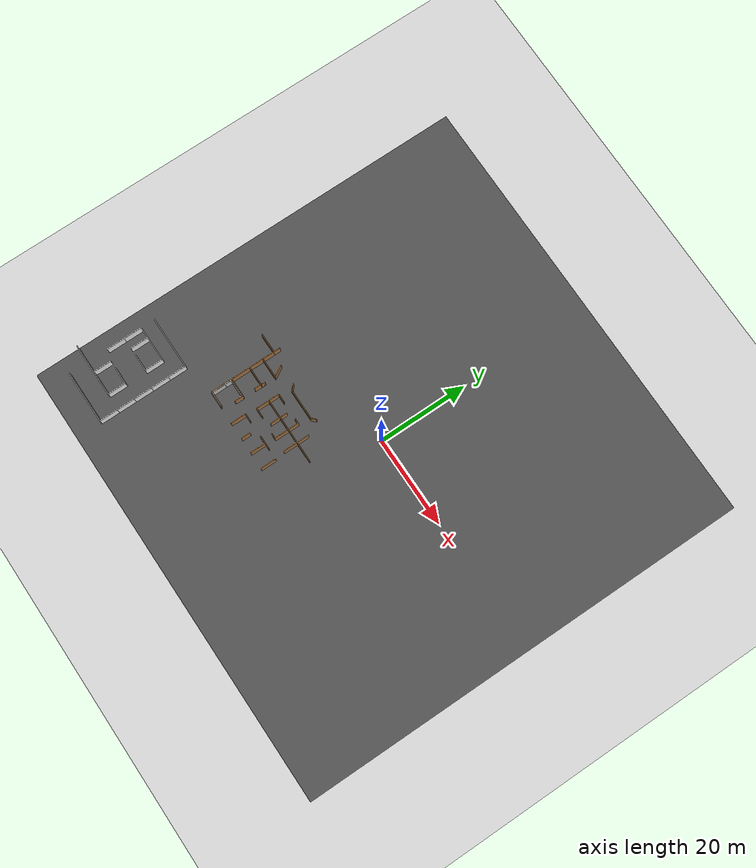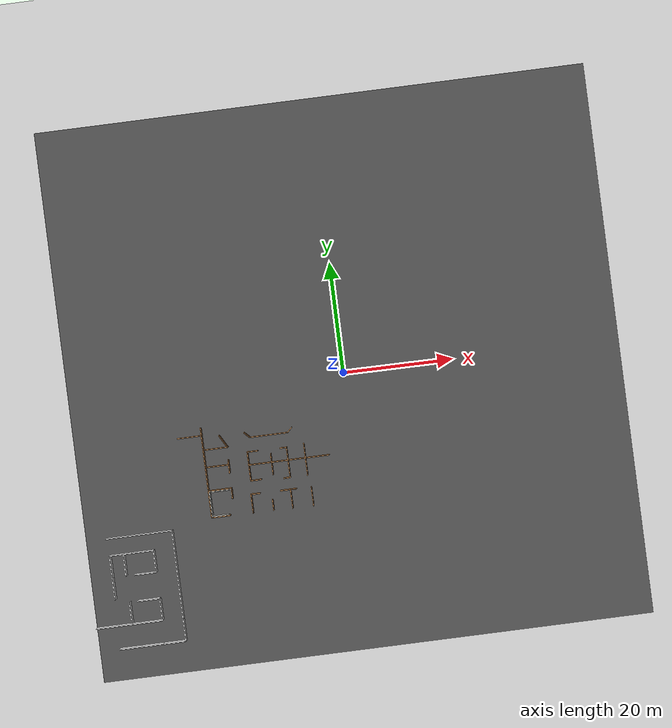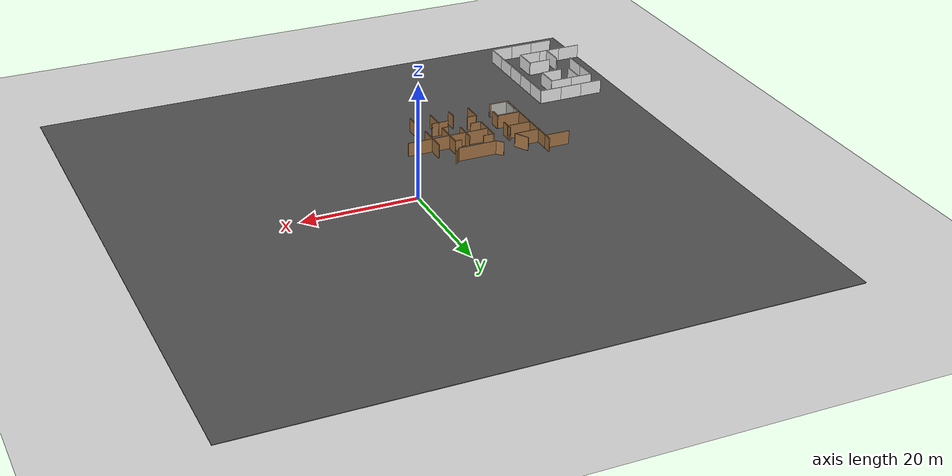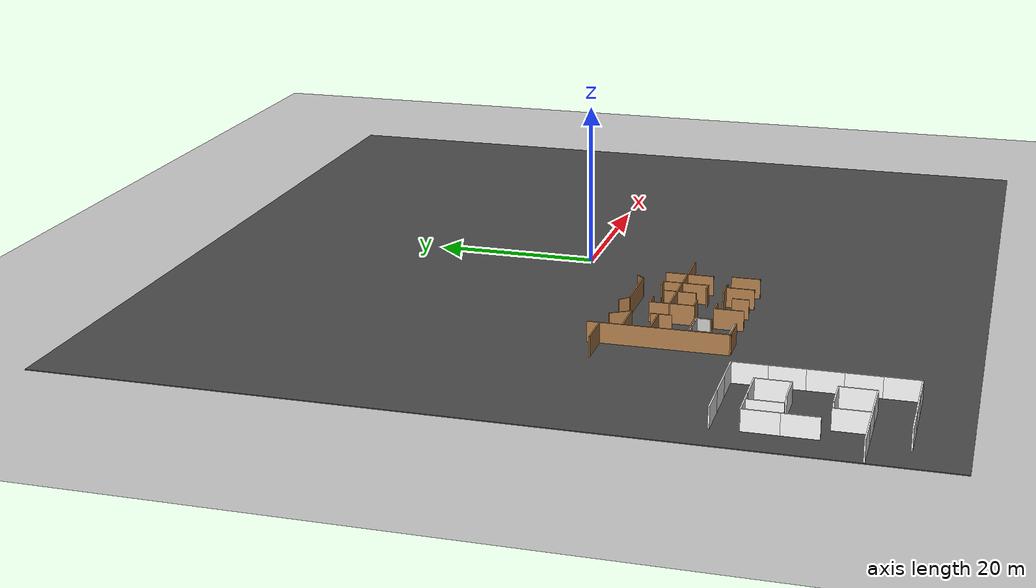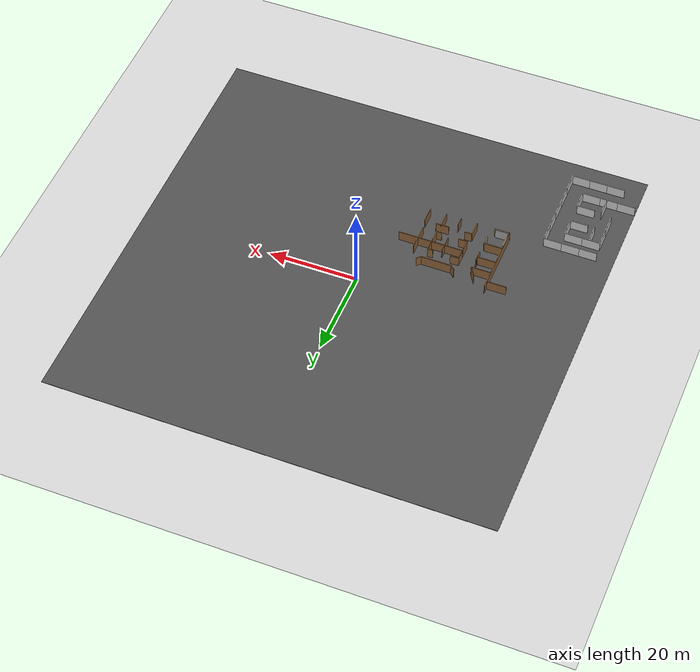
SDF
<sdf version="1.6">
 <world name="default">
  <model name="ground_plane">
   <static>1</static>
   <link name="link">
    <collision name="collision">
     <geometry><plane><normal>0 0 1</normal><size>100 100</size></plane></geometry>
     <surface><friction><ode><mu>100</mu><mu2>50</mu2></ode></friction></surface>
    </collision>
    <visual name="visual">
     <cast_shadows>0</cast_shadows>
     <geometry><plane><normal>0 0 1</normal><size>100 100</size></plane></geometry>
     <material>
      <script><uri>file://media/materials/scripts/gazebo.material</uri><name>Gazebo/Grey</name></script>
     </material>
    </visual>
   </link>
  </model>
  <model name="asphalt_plane">
   <static>1</static>
   <link name="link">
    <collision name="collision"><geometry><box><size>100 100 0.1</size></box></geometry></collision>
    <visual name="visual">
     <cast_shadows>0</cast_shadows>
     <geometry><box><size>100 100 0.1</size></box></geometry>
     <material>
      <script>
       <uri>model://asphalt_plane/materials/scripts</uri>
       <uri>model://asphalt_plane/materials/textures</uri>
       <name>vrc/asphalt</name>
      </script>
     </material>
    </visual>
   </link>
  </model>
  <model name="Hard_wall_wall_3">
   <pose>-26.6192 -21.1644 0 0 -0 0</pose>
   <link name="Wall_0">
    <collision name="Wall_0_Collision">
     <geometry><box><size>3 0.15 2.5</size></box></geometry>
     <pose>0 0 1.25 0 -0 0</pose>
    </collision>
    <visual name="Wall_0_Visual">
     <pose>0 0 1.25 0 -0 0</pose>
     <geometry><box><size>3 0.15 2.5</size></box></geometry>
     <material>
      <script><uri>file://media/materials/scripts/gazebo.material</uri><name>Gazebo/CeilingTiled</name></script>
      <ambient>1 1 1 1</ambient>
     </material>
     <meta><layer>0</layer></meta>
    </visual>
    <pose>0 0 0 0 -0 1.5708</pose>
   </link>
   <static>1</static>
  </model>
  <model name="Hard_wall_wall_4">
   <pose>-26.6244 -19.6415 0 0 -0 0</pose>
   <link name="Wall_0">
    <collision name="Wall_0_Collision">
     <geometry><box><size>3 0.15 2.5</size></box></geometry>
     <pose>0 0 1.25 0 -0 0</pose>
    </collision>
    <visual name="Wall_0_Visual">
     <pose>0 0 1.25 0 -0 0</pose>
     <geometry><box><size>3 0.15 2.5</size></box></geometry>
     <material>
      <script><uri>file://media/materials/scripts/gazebo.material</uri><name>Gazebo/CeilingTiled</name></script>
      <ambient>1 1 1 1</ambient>
     </material>
     <meta><layer>0</layer></meta>
    </visual>
    <pose>0 0 0 0 -0 1.5708</pose>
   </link>
   <static>1</static>
  </model>
  <model name="Hard_wall_wall_6_clone">
   <pose>-25.1114 -22.6438 0 0 -0 1.57079</pose>
   <link name="Wall_0">
    <collision name="Wall_0_Collision">
     <geometry><box><size>3 0.15 2.5</size></box></geometry>
     <pose>0 0 1.25 0 -0 0</pose>
    </collision>
    <visual name="Wall_0_Visual">
     <pose>0 0 1.25 0 -0 0</pose>
     <geometry><box><size>3 0.15 2.5</size></box></geometry>
     <material>
      <script><uri>file://media/materials/scripts/gazebo.material</uri><name>Gazebo/CeilingTiled</name></script>
      <ambient>1 1 1 1</ambient>
     </material>
     <meta><layer>0</layer></meta>
    </visual>
    <pose>0 0 0 0 -0 1.5708</pose>
   </link>
   <static>1</static>
  </model>
  <model name="Hard_wall_wall_6_clone_0">
   <pose>-25.1351 -18.2014 0 0 -0 1.57079</pose>
   <link name="Wall_0">
    <collision name="Wall_0_Collision">
     <geometry><box><size>3 0.15 2.5</size></box></geometry>
     <pose>0 0 1.25 0 -0 0</pose>
    </collision>
    <visual name="Wall_0_Visual">
     <pose>0 0 1.25 0 -0 0</pose>
     <geometry><box><size>3 0.15 2.5</size></box></geometry>
     <material>
      <script><uri>file://media/materials/scripts/gazebo.material</uri><name>Gazebo/CeilingTiled</name></script>
      <ambient>1 1 1 1</ambient>
     </material>
     <meta><layer>0</layer></meta>
    </visual>
    <pose>0 0 0 0 -0 1.5708</pose>
   </link>
   <static>1</static>
  </model>
  <model name="Medium_wall_wall_clone_7">
   <pose>-44.2 -24.2 0 0 -0 0</pose>
   <link name="Wall_0">
    <collision name="Wall_0_Collision">
     <geometry><box><size>4 0.15 2.5</size></box></geometry>
     <pose>0 0 1.25 0 -0 0</pose>
    </collision>
    <visual name="Wall_0_Visual">
     <pose>0 0 1.25 0 -0 0</pose>
     <geometry><box><size>4 0.15 2.5</size></box></geometry>
     <material>
      <script><uri>file://media/materials/scripts/gazebo.material</uri><name>Gazebo/Medium_walls</name></script>
      <ambient>1 1 1 1</ambient>
     </material>
     <meta><layer>0</layer></meta>
    </visual>
   </link>
   <static>1</static>
  </model>
  <model name="Medium_wall_wall_clone_8">
   <pose>-40.2 -24.2 0 0 -0 0</pose>
   <link name="Wall_0">
    <collision name="Wall_0_Collision">
     <geometry><box><size>4 0.15 2.5</size></box></geometry>
     <pose>0 0 1.25 0 -0 0</pose>
    </collision>
    <visual name="Wall_0_Visual">
     <pose>0 0 1.25 0 -0 0</pose>
     <geometry><box><size>4 0.15 2.5</size></box></geometry>
     <material>
      <script><uri>file://media/materials/scripts/gazebo.material</uri><name>Gazebo/Medium_walls</name></script>
      <ambient>1 1 1 1</ambient>
     </material>
     <meta><layer>0</layer></meta>
    </visual>
   </link>
   <static>1</static>
  </model>
  <model name="Medium_wall_wall_clone_9">
   <pose>-36.2 -24.2 0 0 -0 0</pose>
   <link name="Wall_0">
    <collision name="Wall_0_Collision">
     <geometry><box><size>4 0.15 2.5</size></box></geometry>
     <pose>0 0 1.25 0 -0 0</pose>
    </collision>
    <visual name="Wall_0_Visual">
     <pose>0 0 1.25 0 -0 0</pose>
     <geometry><box><size>4 0.15 2.5</size></box></geometry>
     <material>
      <script><uri>file://media/materials/scripts/gazebo.material</uri><name>Gazebo/Medium_walls</name></script>
      <ambient>1 1 1 1</ambient>
     </material>
     <meta><layer>0</layer></meta>
    </visual>
   </link>
   <static>1</static>
  </model>
  <model name="Medium_wall_wall_clone_10">
   <pose>-43.9084 -27.3 0 0 -0 0</pose>
   <link name="Wall_0">
    <collision name="Wall_0_Collision">
     <geometry><box><size>4 0.15 2.5</size></box></geometry>
     <pose>0 0 1.25 0 -0 0</pose>
    </collision>
    <visual name="Wall_0_Visual">
     <pose>0 0 1.25 0 -0 0</pose>
     <geometry><box><size>4 0.15 2.5</size></box></geometry>
     <material>
      <script><uri>file://media/materials/scripts/gazebo.material</uri><name>Gazebo/Medium_walls</name></script>
      <ambient>1 1 1 1</ambient>
     </material>
     <meta><layer>0</layer></meta>
    </visual>
   </link>
   <static>1</static>
  </model>
  <model name="Medium_wall_wall_clone_11">
   <pose>-39.9084 -27.3 0 0 -0 0</pose>
   <link name="Wall_0">
    <collision name="Wall_0_Collision">
     <geometry><box><size>4 0.15 2.5</size></box></geometry>
     <pose>0 0 1.25 0 -0 0</pose>
    </collision>
    <visual name="Wall_0_Visual">
     <pose>0 0 1.25 0 -0 0</pose>
     <geometry><box><size>4 0.15 2.5</size></box></geometry>
     <material>
      <script><uri>file://media/materials/scripts/gazebo.material</uri><name>Gazebo/Medium_walls</name></script>
      <ambient>1 1 1 1</ambient>
     </material>
     <meta><layer>0</layer></meta>
    </visual>
   </link>
   <static>1</static>
  </model>
  <model name="Medium_wall_wall_clone_12">
   <pose>-36.2 -44.2 0 0 -0 0</pose>
   <link name="Wall_0">
    <collision name="Wall_0_Collision">
     <geometry><box><size>4 0.15 2.5</size></box></geometry>
     <pose>0 0 1.25 0 -0 0</pose>
    </collision>
    <visual name="Wall_0_Visual">
     <pose>0 0 1.25 0 -0 0</pose>
     <geometry><box><size>4 0.15 2.5</size></box></geometry>
     <material>
      <script><uri>file://media/materials/scripts/gazebo.material</uri><name>Gazebo/Medium_walls</name></script>
      <ambient>1 1 1 1</ambient>
     </material>
     <meta><layer>0</layer></meta>
    </visual>
   </link>
   <static>1</static>
  </model>
  <model name="Medium_wall_wall_clone_13">
   <pose>-40.2 -44.2 0 0 -0 0</pose>
   <link name="Wall_0">
    <collision name="Wall_0_Collision">
     <geometry><box><size>4 0.15 2.5</size></box></geometry>
     <pose>0 0 1.25 0 -0 0</pose>
    </collision>
    <visual name="Wall_0_Visual">
     <pose>0 0 1.25 0 -0 0</pose>
     <geometry><box><size>4 0.15 2.5</size></box></geometry>
     <material>
      <script><uri>file://media/materials/scripts/gazebo.material</uri><name>Gazebo/Medium_walls</name></script>
      <ambient>1 1 1 1</ambient>
     </material>
     <meta><layer>0</layer></meta>
    </visual>
   </link>
   <static>1</static>
  </model>
  <model name="Medium_wall_wall_clone_14">
   <pose>-44.2 -44.2 0 0 -0 0</pose>
   <link name="Wall_0">
    <collision name="Wall_0_Collision">
     <geometry><box><size>4 0.15 2.5</size></box></geometry>
     <pose>0 0 1.25 0 -0 0</pose>
    </collision>
    <visual name="Wall_0_Visual">
     <pose>0 0 1.25 0 -0 0</pose>
     <geometry><box><size>4 0.15 2.5</size></box></geometry>
     <material>
      <script><uri>file://media/materials/scripts/gazebo.material</uri><name>Gazebo/Medium_walls</name></script>
      <ambient>1 1 1 1</ambient>
     </material>
     <meta><layer>0</layer></meta>
    </visual>
   </link>
   <static>1</static>
  </model>
  <model name="Medium_wall_wall_clone_15">
   <pose>-47.9084 -40 0 0 -0 0</pose>
   <link name="Wall_0">
    <collision name="Wall_0_Collision">
     <geometry><box><size>4 0.15 2.5</size></box></geometry>
     <pose>0 0 1.25 0 -0 0</pose>
    </collision>
    <visual name="Wall_0_Visual">
     <pose>0 0 1.25 0 -0 0</pose>
     <geometry><box><size>4 0.15 2.5</size></box></geometry>
     <material>
      <script><uri>file://media/materials/scripts/gazebo.material</uri><name>Gazebo/Medium_walls</name></script>
      <ambient>1 1 1 1</ambient>
     </material>
     <meta><layer>0</layer></meta>
    </visual>
   </link>
   <static>1</static>
  </model>
  <model name="Medium_wall_wall_clone_16">
   <pose>-43.9084 -40 0 0 -0 0</pose>
   <link name="Wall_0">
    <collision name="Wall_0_Collision">
     <geometry><box><size>4 0.15 2.5</size></box></geometry>
     <pose>0 0 1.25 0 -0 0</pose>
    </collision>
    <visual name="Wall_0_Visual">
     <pose>0 0 1.25 0 -0 0</pose>
     <geometry><box><size>4 0.15 2.5</size></box></geometry>
     <material>
      <script><uri>file://media/materials/scripts/gazebo.material</uri><name>Gazebo/Medium_walls</name></script>
      <ambient>1 1 1 1</ambient>
     </material>
     <meta><layer>0</layer></meta>
    </visual>
   </link>
   <static>1</static>
  </model>
  <model name="Medium_wall_wall_clone_17">
   <pose>-39.9084 -40 0 0 -0 0</pose>
   <link name="Wall_0">
    <collision name="Wall_0_Collision">
     <geometry><box><size>4 0.15 2.5</size></box></geometry>
     <pose>0 0 1.25 0 -0 0</pose>
    </collision>
    <visual name="Wall_0_Visual">
     <pose>0 0 1.25 0 -0 0</pose>
     <geometry><box><size>4 0.15 2.5</size></box></geometry>
     <material>
      <script><uri>file://media/materials/scripts/gazebo.material</uri><name>Gazebo/Medium_walls</name></script>
      <ambient>1 1 1 1</ambient>
     </material>
     <meta><layer>0</layer></meta>
    </visual>
   </link>
   <static>1</static>
  </model>
  <model name="Medium_wall_wall_clone_18">
   <pose>-39.9084 -36 0 0 -0 0</pose>
   <link name="Wall_0">
    <collision name="Wall_0_Collision">
     <geometry><box><size>4 0.15 2.5</size></box></geometry>
     <pose>0 0 1.25 0 -0 0</pose>
    </collision>
    <visual name="Wall_0_Visual">
     <pose>0 0 1.25 0 -0 0</pose>
     <geometry><box><size>4 0.15 2.5</size></box></geometry>
     <material>
      <script><uri>file://media/materials/scripts/gazebo.material</uri><name>Gazebo/Medium_walls</name></script>
      <ambient>1 1 1 1</ambient>
     </material>
     <meta><layer>0</layer></meta>
    </visual>
   </link>
   <static>1</static>
  </model>
  <model name="Medium_wall_wall_clone_19">
   <pose>-39.9084 -31.2445 0 0 -0 0</pose>
   <link name="Wall_0">
    <collision name="Wall_0_Collision">
     <geometry><box><size>4 0.15 2.5</size></box></geometry>
     <pose>0 0 1.25 0 -0 0</pose>
    </collision>
    <visual name="Wall_0_Visual">
     <pose>0 0 1.25 0 -0 0</pose>
     <geometry><box><size>4 0.15 2.5</size></box></geometry>
     <material>
      <script><uri>file://media/materials/scripts/gazebo.material</uri><name>Gazebo/Medium_walls</name></script>
      <ambient>1 1 1 1</ambient>
     </material>
     <meta><layer>0</layer></meta>
    </visual>
   </link>
   <static>1</static>
  </model>
  <model name="Medium_wall_wall_1_clone_4">
   <pose>-34.2 -42.2 0 0 -0 1.57079</pose>
   <link name="Wall_0">
    <collision name="Wall_0_Collision">
     <geometry><box><size>4 0.15 2.5</size></box></geometry>
     <pose>0 0 1.25 0 -0 0</pose>
    </collision>
    <visual name="Wall_0_Visual">
     <pose>0 0 1.25 0 -0 0</pose>
     <geometry><box><size>4 0.15 2.5</size></box></geometry>
     <material>
      <script><uri>file://media/materials/scripts/gazebo.material</uri><name>Gazebo/Medium_walls</name></script>
      <ambient>1 1 1 1</ambient>
     </material>
     <meta><layer>0</layer></meta>
    </visual>
   </link>
   <static>1</static>
  </model>
  <model name="Medium_wall_wall_1_clone_5">
   <pose>-34.2 -38.2 0 0 -0 1.57079</pose>
   <link name="Wall_0">
    <collision name="Wall_0_Collision">
     <geometry><box><size>4 0.15 2.5</size></box></geometry>
     <pose>0 0 1.25 0 -0 0</pose>
    </collision>
    <visual name="Wall_0_Visual">
     <pose>0 0 1.25 0 -0 0</pose>
     <geometry><box><size>4 0.15 2.5</size></box></geometry>
     <material>
      <script><uri>file://media/materials/scripts/gazebo.material</uri><name>Gazebo/Medium_walls</name></script>
      <ambient>1 1 1 1</ambient>
     </material>
     <meta><layer>0</layer></meta>
    </visual>
   </link>
   <static>1</static>
  </model>
  <model name="Medium_wall_wall_1_clone_6">
   <pose>-34.2 -34.2 0 0 -0 1.57079</pose>
   <link name="Wall_0">
    <collision name="Wall_0_Collision">
     <geometry><box><size>4 0.15 2.5</size></box></geometry>
     <pose>0 0 1.25 0 -0 0</pose>
    </collision>
    <visual name="Wall_0_Visual">
     <pose>0 0 1.25 0 -0 0</pose>
     <geometry><box><size>4 0.15 2.5</size></box></geometry>
     <material>
      <script><uri>file://media/materials/scripts/gazebo.material</uri><name>Gazebo/Medium_walls</name></script>
      <ambient>1 1 1 1</ambient>
     </material>
     <meta><layer>0</layer></meta>
    </visual>
   </link>
   <static>1</static>
  </model>
  <model name="Medium_wall_wall_1_clone_7">
   <pose>-34.2 -30.2 0 0 -0 1.57079</pose>
   <link name="Wall_0">
    <collision name="Wall_0_Collision">
     <geometry><box><size>4 0.15 2.5</size></box></geometry>
     <pose>0 0 1.25 0 -0 0</pose>
    </collision>
    <visual name="Wall_0_Visual">
     <pose>0 0 1.25 0 -0 0</pose>
     <geometry><box><size>4 0.15 2.5</size></box></geometry>
     <material>
      <script><uri>file://media/materials/scripts/gazebo.material</uri><name>Gazebo/Medium_walls</name></script>
      <ambient>1 1 1 1</ambient>
     </material>
     <meta><layer>0</layer></meta>
    </visual>
   </link>
   <static>1</static>
  </model>
  <model name="Medium_wall_wall_1_clone_8">
   <pose>-34.2 -26.2 0 0 -0 1.57079</pose>
   <link name="Wall_0">
    <collision name="Wall_0_Collision">
     <geometry><box><size>4 0.15 2.5</size></box></geometry>
     <pose>0 0 1.25 0 -0 0</pose>
    </collision>
    <visual name="Wall_0_Visual">
     <pose>0 0 1.25 0 -0 0</pose>
     <geometry><box><size>4 0.15 2.5</size></box></geometry>
     <material>
      <script><uri>file://media/materials/scripts/gazebo.material</uri><name>Gazebo/Medium_walls</name></script>
      <ambient>1 1 1 1</ambient>
     </material>
     <meta><layer>0</layer></meta>
    </visual>
   </link>
   <static>1</static>
  </model>
  <model name="Medium_wall_wall_1_clone_9">
   <pose>-37.9084 -38 0 0 -0 1.57079</pose>
   <link name="Wall_0">
    <collision name="Wall_0_Collision">
     <geometry><box><size>4 0.15 2.5</size></box></geometry>
     <pose>0 0 1.25 0 -0 0</pose>
    </collision>
    <visual name="Wall_0_Visual">
     <pose>0 0 1.25 0 -0 0</pose>
     <geometry><box><size>4 0.15 2.5</size></box></geometry>
     <material>
      <script><uri>file://media/materials/scripts/gazebo.material</uri><name>Gazebo/Medium_walls</name></script>
      <ambient>1 1 1 1</ambient>
     </material>
     <meta><layer>0</layer></meta>
    </visual>
   </link>
   <static>1</static>
  </model>
  <model name="Medium_wall_wall_1_clone_10">
   <pose>-37.9551 -29.3 0 0 -0 1.57079</pose>
   <link name="Wall_0">
    <collision name="Wall_0_Collision">
     <geometry><box><size>4 0.15 2.5</size></box></geometry>
     <pose>0 0 1.25 0 -0 0</pose>
    </collision>
    <visual name="Wall_0_Visual">
     <pose>0 0 1.25 0 -0 0</pose>
     <geometry><box><size>4 0.15 2.5</size></box></geometry>
     <material>
      <script><uri>file://media/materials/scripts/gazebo.material</uri><name>Gazebo/Medium_walls</name></script>
      <ambient>1 1 1 1</ambient>
     </material>
     <meta><layer>0</layer></meta>
    </visual>
   </link>
   <static>1</static>
  </model>
  <model name="Medium_wall_wall_1_clone_11">
   <pose>-45.8877 -29.3 0 0 -0 1.57079</pose>
   <link name="Wall_0">
    <collision name="Wall_0_Collision">
     <geometry><box><size>4 0.15 2.5</size></box></geometry>
     <pose>0 0 1.25 0 -0 0</pose>
    </collision>
    <visual name="Wall_0_Visual">
     <pose>0 0 1.25 0 -0 0</pose>
     <geometry><box><size>4 0.15 2.5</size></box></geometry>
     <material>
      <script><uri>file://media/materials/scripts/gazebo.material</uri><name>Gazebo/Medium_walls</name></script>
      <ambient>1 1 1 1</ambient>
     </material>
     <meta><layer>0</layer></meta>
    </visual>
   </link>
   <static>1</static>
  </model>
  <model name="Medium_wall_wall_1_clone_12">
   <pose>-43.4 -29.3 0 0 -0 1.57079</pose>
   <link name="Wall_0">
    <collision name="Wall_0_Collision">
     <geometry><box><size>4 0.15 2.5</size></box></geometry>
     <pose>0 0 1.25 0 -0 0</pose>
    </collision>
    <visual name="Wall_0_Visual">
     <pose>0 0 1.25 0 -0 0</pose>
     <geometry><box><size>4 0.15 2.5</size></box></geometry>
     <material>
      <script><uri>file://media/materials/scripts/gazebo.material</uri><name>Gazebo/Medium_walls</name></script>
      <ambient>1 1 1 1</ambient>
     </material>
     <meta><layer>0</layer></meta>
    </visual>
   </link>
   <static>1</static>
  </model>
  <model name="Medium_wall_wall_1_clone_13">
   <pose>-43.4 -38 0 0 -0 1.57079</pose>
   <link name="Wall_0">
    <collision name="Wall_0_Collision">
     <geometry><box><size>4 0.15 2.5</size></box></geometry>
     <pose>0 0 1.25 0 -0 0</pose>
    </collision>
    <visual name="Wall_0_Visual">
     <pose>0 0 1.25 0 -0 0</pose>
     <geometry><box><size>4 0.15 2.5</size></box></geometry>
     <material>
      <script><uri>file://media/materials/scripts/gazebo.material</uri><name>Gazebo/Medium_walls</name></script>
      <ambient>1 1 1 1</ambient>
     </material>
     <meta><layer>0</layer></meta>
    </visual>
   </link>
   <static>1</static>
  </model>
  <model name="Medium_wall_wall_1_clone_14">
   <pose>-45.8877 -33.3 0 0 -0 1.57079</pose>
   <link name="Wall_0">
    <collision name="Wall_0_Collision">
     <geometry><box><size>4 0.15 2.5</size></box></geometry>
     <pose>0 0 1.25 0 -0 0</pose>
    </collision>
    <visual name="Wall_0_Visual">
     <pose>0 0 1.25 0 -0 0</pose>
     <geometry><box><size>4 0.15 2.5</size></box></geometry>
     <material>
      <script><uri>file://media/materials/scripts/gazebo.material</uri><name>Gazebo/Medium_walls</name></script>
      <ambient>1 1 1 1</ambient>
     </material>
     <meta><layer>0</layer></meta>
    </visual>
   </link>
   <static>1</static>
  </model>
  <model name="Soft_wall_v1_1">
   <pose>-14.3408 -3.86286 0 0 -0 0</pose>
   <link name="Wall_159">
    <collision name="Wall_159_Collision">
     <geometry><box><size>1.5 0.15 2.5</size></box></geometry>
     <pose>0 0 1.25 0 -0 0</pose>
    </collision>
    <visual name="Wall_159_Visual">
     <pose>0 0 1.25 0 -0 0</pose>
     <geometry><box><size>1.5 0.15 2.5</size></box></geometry>
     <material>
      <script><uri>file://media/materials/scripts/gazebo.material</uri><name>Gazebo/Wood</name></script>
      <ambient>1 1 1 1</ambient>
     </material>
     <meta><layer>0</layer></meta>
    </visual>
    <pose>-12.4568 -3.428 0 0 -0 1.5708</pose>
   </link>
   <link name="Wall_164">
    <collision name="Wall_164_Collision">
     <geometry><box><size>4.5 0.15 2.5</size></box></geometry>
     <pose>0 0 1.25 0 -0 0</pose>
    </collision>
    <visual name="Wall_164_Visual">
     <pose>0 0 1.25 0 -0 0</pose>
     <geometry><box><size>4.5 0.15 2.5</size></box></geometry>
     <material>
      <script><uri>file://media/materials/scripts/gazebo.material</uri><name>Gazebo/Wood</name></script>
      <ambient>1 1 1 1</ambient>
     </material>
     <meta><layer>0</layer></meta>
    </visual>
    <pose>-10.2229 -6.73409 0 0 -0 0</pose>
   </link>
   <link name="Wall_165">
    <collision name="Wall_165_Collision">
     <geometry><box><size>2.75 0.15 2.5</size></box></geometry>
     <pose>0 0 1.25 0 -0 0</pose>
    </collision>
    <visual name="Wall_165_Visual">
     <pose>0 0 1.25 0 -0 0</pose>
     <geometry><box><size>2.75 0.15 2.5</size></box></geometry>
     <material>
      <script><uri>file://media/materials/scripts/gazebo.material</uri><name>Gazebo/Wood</name></script>
      <ambient>1 1 1 1</ambient>
     </material>
     <meta><layer>0</layer></meta>
    </visual>
    <pose>-8.69791 -5.60825 0 0 -0 2.0944</pose>
   </link>
   <link name="Wall_167">
    <collision name="Wall_167_Collision">
     <geometry><box><size>4.25 0.15 2.5</size></box></geometry>
     <pose>0 0 1.25 0 -0 0</pose>
    </collision>
    <visual name="Wall_167_Visual">
     <pose>0 0 1.25 0 -0 0</pose>
     <geometry><box><size>4.25 0.15 2.5</size></box></geometry>
     <material>
      <script><uri>file://media/materials/scripts/gazebo.material</uri><name>Gazebo/Wood</name></script>
      <ambient>1 1 1 1</ambient>
     </material>
     <meta><layer>0</layer></meta>
    </visual>
    <pose>-10.2944 -9.89074 0 0 -0 0</pose>
   </link>
   <link name="Wall_168">
    <collision name="Wall_168_Collision">
     <geometry><box><size>1 0.15 2.5</size></box></geometry>
     <pose>0 0 1.25 0 -0 0</pose>
    </collision>
    <visual name="Wall_168_Visual">
     <pose>0 0 1.25 0 -0 0</pose>
     <geometry><box><size>1 0.15 2.5</size></box></geometry>
     <material>
      <script><uri>file://media/materials/scripts/gazebo.material</uri><name>Gazebo/Wood</name></script>
      <ambient>1 1 1 1</ambient>
     </material>
     <meta><layer>0</layer></meta>
    </visual>
    <pose>-8.24441 -9.46574 0 0 -0 1.5708</pose>
   </link>
   <link name="Wall_169">
    <collision name="Wall_169_Collision">
     <geometry><box><size>2.5 0.15 2.5</size></box></geometry>
     <pose>0 0 1.25 0 -0 0</pose>
    </collision>
    <visual name="Wall_169_Visual">
     <pose>0 0 1.25 0 -0 0</pose>
     <geometry><box><size>2.5 0.15 2.5</size></box></geometry>
     <material>
      <script><uri>file://media/materials/scripts/gazebo.material</uri><name>Gazebo/Wood</name></script>
      <ambient>1 1 1 1</ambient>
     </material>
     <meta><layer>0</layer></meta>
    </visual>
    <pose>-8.24441 -10.2157 0 0 0 -1.5708</pose>
   </link>
   <link name="Wall_171">
    <collision name="Wall_171_Collision">
     <geometry><box><size>4.25 0.15 2.5</size></box></geometry>
     <pose>0 0 1.25 0 -0 0</pose>
    </collision>
    <visual name="Wall_171_Visual">
     <pose>0 0 1.25 0 -0 0</pose>
     <geometry><box><size>4.25 0.15 2.5</size></box></geometry>
     <material>
      <script><uri>file://media/materials/scripts/gazebo.material</uri><name>Gazebo/Wood</name></script>
      <ambient>1 1 1 1</ambient>
     </material>
     <meta><layer>0</layer></meta>
    </visual>
    <pose>-10.3547 -14.1456 0 0 -0 0</pose>
   </link>
   <link name="Wall_172">
    <collision name="Wall_172_Collision">
     <geometry><box><size>2 0.15 2.5</size></box></geometry>
     <pose>0 0 1.25 0 -0 0</pose>
    </collision>
    <visual name="Wall_172_Visual">
     <pose>0 0 1.25 0 -0 0</pose>
     <geometry><box><size>2 0.15 2.5</size></box></geometry>
     <material>
      <script><uri>file://media/materials/scripts/gazebo.material</uri><name>Gazebo/Wood</name></script>
      <ambient>1 1 1 1</ambient>
     </material>
     <meta><layer>0</layer></meta>
    </visual>
    <pose>-8.3047 -15.0706 0 0 0 -1.5708</pose>
   </link>
   <link name="Wall_240">
    <collision name="Wall_240_Collision">
     <geometry><box><size>14.75 0.15 2.5</size></box></geometry>
     <pose>0 0 1.25 0 -0 0</pose>
    </collision>
    <visual name="Wall_240_Visual">
     <pose>0 0 1.25 0 -0 0</pose>
     <geometry><box><size>14.75 0.15 2.5</size></box></geometry>
     <material>
      <script><uri>file://media/materials/scripts/gazebo.material</uri><name>Gazebo/Wood</name></script>
      <ambient>1 1 1 1</ambient>
     </material>
     <meta><layer>0</layer></meta>
    </visual>
    <pose>2.64575 -10.4128 0 0 -0 3.14159</pose>
   </link>
   <link name="Wall_241">
    <collision name="Wall_241_Collision">
     <geometry><box><size>3 0.15 2.5</size></box></geometry>
     <pose>0 0 1.25 0 -0 0</pose>
    </collision>
    <visual name="Wall_241_Visual">
     <pose>0 0 1.25 0 -0 0</pose>
     <geometry><box><size>3 0.15 2.5</size></box></geometry>
     <material>
      <script><uri>file://media/materials/scripts/gazebo.material</uri><name>Gazebo/Wood</name></script>
      <ambient>1 1 1 1</ambient>
     </material>
     <meta><layer>0</layer></meta>
    </visual>
    <pose>-4.65424 -11.8378 0 0 0 -1.5708</pose>
   </link>
   <link name="Wall_242">
    <collision name="Wall_242_Collision">
     <geometry><box><size>2 0.15 2.5</size></box></geometry>
     <pose>0 0 1.25 0 -0 0</pose>
    </collision>
    <visual name="Wall_242_Visual">
     <pose>0 0 1.25 0 -0 0</pose>
     <geometry><box><size>2 0.15 2.5</size></box></geometry>
     <material>
      <script><uri>file://media/materials/scripts/gazebo.material</uri><name>Gazebo/Wood</name></script>
      <ambient>1 1 1 1</ambient>
     </material>
     <meta><layer>0</layer></meta>
    </visual>
    <pose>-3.72924 -13.2628 0 0 -0 0</pose>
   </link>
   <link name="Wall_244">
    <collision name="Wall_244_Collision">
     <geometry><box><size>2.25 0.15 2.5</size></box></geometry>
     <pose>0 0 1.25 0 -0 0</pose>
    </collision>
    <visual name="Wall_244_Visual">
     <pose>0 0 1.25 0 -0 0</pose>
     <geometry><box><size>2.25 0.15 2.5</size></box></geometry>
     <material>
      <script><uri>file://media/materials/scripts/gazebo.material</uri><name>Gazebo/Wood</name></script>
      <ambient>1 1 1 1</ambient>
     </material>
     <meta><layer>0</layer></meta>
    </visual>
    <pose>-0.53809 -11.5666 0 0 0 -1.5708</pose>
   </link>
   <link name="Wall_252">
    <collision name="Wall_252_Collision">
     <geometry><box><size>3.25 0.15 2.5</size></box></geometry>
     <pose>0 0 1.25 0 -0 0</pose>
    </collision>
    <visual name="Wall_252_Visual">
     <pose>0 0 1.25 0 -0 0</pose>
     <geometry><box><size>3.25 0.15 2.5</size></box></geometry>
     <material>
      <script><uri>file://media/materials/scripts/gazebo.material</uri><name>Gazebo/Wood</name></script>
      <ambient>1 1 1 1</ambient>
     </material>
     <meta><layer>0</layer></meta>
    </visual>
    <pose>5.59669 -11.9573 0 0 0 -1.5708</pose>
   </link>
   <link name="Wall_254">
    <collision name="Wall_254_Collision">
     <geometry><box><size>3.25 0.15 2.5</size></box></geometry>
     <pose>0 0 1.25 0 -0 0</pose>
    </collision>
    <visual name="Wall_254_Visual">
     <pose>0 0 1.25 0 -0 0</pose>
     <geometry><box><size>3.25 0.15 2.5</size></box></geometry>
     <material>
      <script><uri>file://media/materials/scripts/gazebo.material</uri><name>Gazebo/Wood</name></script>
      <ambient>1 1 1 1</ambient>
     </material>
     <meta><layer>0</layer></meta>
    </visual>
    <pose>2.44005 -12.0108 0 0 0 -1.5708</pose>
   </link>
   <link name="Wall_255">
    <collision name="Wall_255_Collision">
     <geometry><box><size>1.25 0.15 2.5</size></box></geometry>
     <pose>0 0 1.25 0 -0 0</pose>
    </collision>
    <visual name="Wall_255_Visual">
     <pose>0 0 1.25 0 -0 0</pose>
     <geometry><box><size>1.25 0.15 2.5</size></box></geometry>
     <material>
      <script><uri>file://media/materials/scripts/gazebo.material</uri><name>Gazebo/Wood</name></script>
      <ambient>1 1 1 1</ambient>
     </material>
     <meta><layer>0</layer></meta>
    </visual>
    <pose>1.89004 -13.5608 0 0 -0 3.14159</pose>
   </link>
   <link name="Wall_257">
    <collision name="Wall_257_Collision">
     <geometry><box><size>2.75 0.15 2.5</size></box></geometry>
     <pose>0 0 1.25 0 -0 0</pose>
    </collision>
    <visual name="Wall_257_Visual">
     <pose>0 0 1.25 0 -0 0</pose>
     <geometry><box><size>2.75 0.15 2.5</size></box></geometry>
     <material>
      <script><uri>file://media/materials/scripts/gazebo.material</uri><name>Gazebo/Wood</name></script>
      <ambient>1 1 1 1</ambient>
     </material>
     <meta><layer>0</layer></meta>
    </visual>
    <pose>5.59669 -9.10726 0 0 -0 1.5708</pose>
   </link>
   <link name="Wall_259">
    <collision name="Wall_259_Collision">
     <geometry><box><size>2.5 0.15 2.5</size></box></geometry>
     <pose>0 0 1.25 0 -0 0</pose>
    </collision>
    <visual name="Wall_259_Visual">
     <pose>0 0 1.25 0 -0 0</pose>
     <geometry><box><size>2.5 0.15 2.5</size></box></geometry>
     <material>
      <script><uri>file://media/materials/scripts/gazebo.material</uri><name>Gazebo/Wood</name></script>
      <ambient>1 1 1 1</ambient>
     </material>
     <meta><layer>0</layer></meta>
    </visual>
    <pose>-4.65424 -9.23778 0 0 -0 1.5708</pose>
   </link>
   <link name="Wall_260">
    <collision name="Wall_260_Collision">
     <geometry><box><size>2 0.15 2.5</size></box></geometry>
     <pose>0 0 1.25 0 -0 0</pose>
    </collision>
    <visual name="Wall_260_Visual">
     <pose>0 0 1.25 0 -0 0</pose>
     <geometry><box><size>2 0.15 2.5</size></box></geometry>
     <material>
      <script><uri>file://media/materials/scripts/gazebo.material</uri><name>Gazebo/Wood</name></script>
      <ambient>1 1 1 1</ambient>
     </material>
     <meta><layer>0</layer></meta>
    </visual>
    <pose>-3.72924 -8.06278 0 0 -0 0</pose>
   </link>
   <link name="Wall_262">
    <collision name="Wall_262_Collision">
     <geometry><box><size>1.75 0.15 2.5</size></box></geometry>
     <pose>0 0 1.25 0 -0 0</pose>
    </collision>
    <visual name="Wall_262_Visual">
     <pose>0 0 1.25 0 -0 0</pose>
     <geometry><box><size>1.75 0.15 2.5</size></box></geometry>
     <material>
      <script><uri>file://media/materials/scripts/gazebo.material</uri><name>Gazebo/Wood</name></script>
      <ambient>1 1 1 1</ambient>
     </material>
     <meta><layer>0</layer></meta>
    </visual>
    <pose>-0.53809 -9.71664 0 0 -0 1.5708</pose>
   </link>
   <link name="Wall_264">
    <collision name="Wall_264_Collision">
     <geometry><box><size>2.5 0.15 2.5</size></box></geometry>
     <pose>0 0 1.25 0 -0 0</pose>
    </collision>
    <visual name="Wall_264_Visual">
     <pose>0 0 1.25 0 -0 0</pose>
     <geometry><box><size>2.5 0.15 2.5</size></box></geometry>
     <material>
      <script><uri>file://media/materials/scripts/gazebo.material</uri><name>Gazebo/Wood</name></script>
      <ambient>1 1 1 1</ambient>
     </material>
     <meta><layer>0</layer></meta>
    </visual>
    <pose>2.44005 -9.28576 0 0 -0 1.5708</pose>
   </link>
   <link name="Wall_265">
    <collision name="Wall_265_Collision">
     <geometry><box><size>1.25 0.15 2.5</size></box></geometry>
     <pose>0 0 1.25 0 -0 0</pose>
    </collision>
    <visual name="Wall_265_Visual">
     <pose>0 0 1.25 0 -0 0</pose>
     <geometry><box><size>1.25 0.15 2.5</size></box></geometry>
     <material>
      <script><uri>file://media/materials/scripts/gazebo.material</uri><name>Gazebo/Wood</name></script>
      <ambient>1 1 1 1</ambient>
     </material>
     <meta><layer>0</layer></meta>
    </visual>
    <pose>1.89004 -8.11076 0 0 -0 3.14159</pose>
   </link>
   <link name="Wall_302">
    <collision name="Wall_302_Collision">
     <geometry><box><size>1.5 0.15 2.5</size></box></geometry>
     <pose>0 0 1.25 0 -0 0</pose>
    </collision>
    <visual name="Wall_302_Visual">
     <pose>0 0 1.25 0 -0 0</pose>
     <geometry><box><size>1.5 0.15 2.5</size></box></geometry>
     <material>
      <script><uri>file://media/materials/scripts/gazebo.material</uri><name>Gazebo/Wood</name></script>
      <ambient>1 1 1 1</ambient>
     </material>
     <meta><layer>0</layer></meta>
    </visual>
    <pose>-4.32982 -5.00708 0 0 0 -0.785398</pose>
   </link>
   <link name="Wall_303">
    <collision name="Wall_303_Collision">
     <geometry><box><size>7 0.15 2.5</size></box></geometry>
     <pose>0 0 1.25 0 -0 0</pose>
    </collision>
    <visual name="Wall_303_Visual">
     <pose>0 0 1.25 0 -0 0</pose>
     <geometry><box><size>7 0.15 2.5</size></box></geometry>
     <material>
      <script><uri>file://media/materials/scripts/gazebo.material</uri><name>Gazebo/Wood</name></script>
      <ambient>1 1 1 1</ambient>
     </material>
     <meta><layer>0</layer></meta>
    </visual>
    <pose>-0.427524 -5.48438 0 0 -0 0</pose>
   </link>
   <link name="Wall_304">
    <collision name="Wall_304_Collision">
     <geometry><box><size>1.25 0.15 2.5</size></box></geometry>
     <pose>0 0 1.25 0 -0 0</pose>
    </collision>
    <visual name="Wall_304_Visual">
     <pose>0 0 1.25 0 -0 0</pose>
     <geometry><box><size>1.25 0.15 2.5</size></box></geometry>
     <material>
      <script><uri>file://media/materials/scripts/gazebo.material</uri><name>Gazebo/Wood</name></script>
      <ambient>1 1 1 1</ambient>
     </material>
     <meta><layer>0</layer></meta>
    </visual>
    <pose>3.38639 -5.09547 0 0 -0 0.785398</pose>
   </link>
   <link name="Wall_55">
    <collision name="Wall_55_Collision">
     <geometry><box><size>3.5 0.15 2.5</size></box></geometry>
     <pose>0 0 1.25 0 -0 0</pose>
    </collision>
    <visual name="Wall_55_Visual">
     <pose>0 0 1.25 0 -0 0</pose>
     <geometry><box><size>3.5 0.15 2.5</size></box></geometry>
     <material>
      <script><uri>file://media/materials/scripts/gazebo.material</uri><name>Gazebo/Wood</name></script>
      <ambient>1 1 1 1</ambient>
     </material>
     <meta><layer>0</layer></meta>
    </visual>
    <pose>5.96875 -17.4404 0 0 -0 1.5708</pose>
   </link>
   <link name="Wall_57">
    <collision name="Wall_57_Collision">
     <geometry><box><size>3.5 0.15 2.5</size></box></geometry>
     <pose>0 0 1.25 0 -0 0</pose>
    </collision>
    <visual name="Wall_57_Visual">
     <pose>0 0 1.25 0 -0 0</pose>
     <geometry><box><size>3.5 0.15 2.5</size></box></geometry>
     <material>
      <script><uri>file://media/materials/scripts/gazebo.material</uri><name>Gazebo/Wood</name></script>
      <ambient>1 1 1 1</ambient>
     </material>
     <meta><layer>0</layer></meta>
    </visual>
    <pose>2.21555 -17.3789 0 0 -0 1.5708</pose>
   </link>
   <link name="Wall_58">
    <collision name="Wall_58_Collision">
     <geometry><box><size>1.25 0.15 2.5</size></box></geometry>
     <pose>0 0 1.25 0 -0 0</pose>
    </collision>
    <visual name="Wall_58_Visual">
     <pose>0 0 1.25 0 -0 0</pose>
     <geometry><box><size>1.25 0.15 2.5</size></box></geometry>
     <material>
      <script><uri>file://media/materials/scripts/gazebo.material</uri><name>Gazebo/Wood</name></script>
      <ambient>1 1 1 1</ambient>
     </material>
     <meta><layer>0</layer></meta>
    </visual>
    <pose>2.76555 -15.7039 0 0 -0 0</pose>
   </link>
   <link name="Wall_59">
    <collision name="Wall_59_Collision">
     <geometry><box><size>3 0.15 2.5</size></box></geometry>
     <pose>0 0 1.25 0 -0 0</pose>
    </collision>
    <visual name="Wall_59_Visual">
     <pose>0 0 1.25 0 -0 0</pose>
     <geometry><box><size>3 0.15 2.5</size></box></geometry>
     <material>
      <script><uri>file://media/materials/scripts/gazebo.material</uri><name>Gazebo/Wood</name></script>
      <ambient>1 1 1 1</ambient>
     </material>
     <meta><layer>0</layer></meta>
    </visual>
    <pose>1.89055 -15.7039 0 0 -0 3.14159</pose>
   </link>
   <link name="Wall_6">
    <collision name="Wall_6_Collision">
     <geometry><box><size>3.5 0.15 2.5</size></box></geometry>
     <pose>0 0 1.25 0 -0 0</pose>
    </collision>
    <visual name="Wall_6_Visual">
     <pose>0 0 1.25 0 -0 0</pose>
     <geometry><box><size>3.5 0.15 2.5</size></box></geometry>
     <material>
      <script><uri>file://media/materials/scripts/gazebo.material</uri><name>Gazebo/Wood</name></script>
      <ambient>1 1 1 1</ambient>
     </material>
     <meta><layer>0</layer></meta>
    </visual>
    <pose>-10.7818 -18.953 0 0 -0 0</pose>
   </link>
   <link name="Wall_61">
    <collision name="Wall_61_Collision">
     <geometry><box><size>3.5 0.15 2.5</size></box></geometry>
     <pose>0 0 1.25 0 -0 0</pose>
    </collision>
    <visual name="Wall_61_Visual">
     <pose>0 0 1.25 0 -0 0</pose>
     <geometry><box><size>3.5 0.15 2.5</size></box></geometry>
     <material>
      <script><uri>file://media/materials/scripts/gazebo.material</uri><name>Gazebo/Wood</name></script>
      <ambient>1 1 1 1</ambient>
     </material>
     <meta><layer>0</layer></meta>
    </visual>
    <pose>-4.95338 -17.3764 0 0 -0 1.5708</pose>
   </link>
   <link name="Wall_62">
    <collision name="Wall_62_Collision">
     <geometry><box><size>1.75 0.15 2.5</size></box></geometry>
     <pose>0 0 1.25 0 -0 0</pose>
    </collision>
    <visual name="Wall_62_Visual">
     <pose>0 0 1.25 0 -0 0</pose>
     <geometry><box><size>1.75 0.15 2.5</size></box></geometry>
     <material>
      <script><uri>file://media/materials/scripts/gazebo.material</uri><name>Gazebo/Wood</name></script>
      <ambient>1 1 1 1</ambient>
     </material>
     <meta><layer>0</layer></meta>
    </visual>
    <pose>-4.15338 -15.7014 0 0 -0 0</pose>
   </link>
   <link name="Wall_64">
    <collision name="Wall_64_Collision">
     <geometry><box><size>2 0.15 2.5</size></box></geometry>
     <pose>0 0 1.25 0 -0 0</pose>
    </collision>
    <visual name="Wall_64_Visual">
     <pose>0 0 1.25 0 -0 0</pose>
     <geometry><box><size>2 0.15 2.5</size></box></geometry>
     <material>
      <script><uri>file://media/materials/scripts/gazebo.material</uri><name>Gazebo/Wood</name></script>
      <ambient>1 1 1 1</ambient>
     </material>
     <meta><layer>0</layer></meta>
    </visual>
    <pose>-1.23001 -18.0674 0 0 -0 1.5708</pose>
   </link>
   <link name="Wall_8">
    <collision name="Wall_8_Collision">
     <geometry><box><size>15 0.15 2.5</size></box></geometry>
     <pose>0 0 1.25 0 -0 0</pose>
    </collision>
    <visual name="Wall_8_Visual">
     <pose>0 0 1.25 0 -0 0</pose>
     <geometry><box><size>15 0.15 2.5</size></box></geometry>
     <material>
      <script><uri>file://media/materials/scripts/gazebo.material</uri><name>Gazebo/Wood</name></script>
      <ambient>1 1 1 1</ambient>
     </material>
     <meta><layer>0</layer></meta>
    </visual>
    <pose>-12.4568 -11.528 0 0 -0 1.5708</pose>
   </link>
   <link name="Wall_9">
    <collision name="Wall_9_Collision">
     <geometry><box><size>4.5 0.15 2.5</size></box></geometry>
     <pose>0 0 1.25 0 -0 0</pose>
    </collision>
    <visual name="Wall_9_Visual">
     <pose>0 0 1.25 0 -0 0</pose>
     <geometry><box><size>4.5 0.15 2.5</size></box></geometry>
     <material>
      <script><uri>file://media/materials/scripts/gazebo.material</uri><name>Gazebo/Wood</name></script>
      <ambient>1 1 1 1</ambient>
     </material>
     <meta><layer>0</layer></meta>
    </visual>
    <pose>-14.6318 -4.103 0 0 -0 3.14159</pose>
   </link>
   <static>1</static>
  </model>
  <model name="Hard_wall_wall_6_clone_1_clone">
   <pose>-24.0801 -18.2049 0 0 -0 1.57079</pose>
   <link name="Wall_0">
    <collision name="Wall_0_Collision">
     <geometry><box><size>3 0.15 2.5</size></box></geometry>
     <pose>0 0 1.25 0 -0 0</pose>
    </collision>
    <visual name="Wall_0_Visual">
     <pose>0 0 1.25 0 -0 0</pose>
     <geometry><box><size>3 0.15 2.5</size></box></geometry>
     <material>
      <script><uri>file://media/materials/scripts/gazebo.material</uri><name>Gazebo/CeilingTiled</name></script>
      <ambient>1 1 1 1</ambient>
     </material>
     <meta><layer>0</layer></meta>
    </visual>
    <pose>0 0 0 0 -0 1.5708</pose>
   </link>
   <static>1</static>
  </model>
  <model name="Hard_wall_wall_6_clone_8_clone_1">
   <pose>-22.771 -19.0353 0 0 -0 0</pose>
   <link name="Wall_0">
    <collision name="Wall_0_Collision">
     <geometry><box><size>1.5 0.15 2.5</size></box></geometry>
     <pose>0 0 1.25 0 -0 0</pose>
    </collision>
    <visual name="Wall_0_Visual">
     <pose>0 0 1.25 0 -0 0</pose>
     <geometry><box><size>1.5 0.15 2.5</size></box></geometry>
     <material>
      <script><uri>file://media/materials/scripts/gazebo.material</uri><name>Gazebo/CeilingTiled</name></script>
      <ambient>1 1 1 1</ambient>
     </material>
     <meta><layer>0</layer></meta>
    </visual>
    <pose>0 0 0 0 -0 1.5708</pose>
   </link>
   <static>1</static>
  </model>
 </world>
</sdf>
